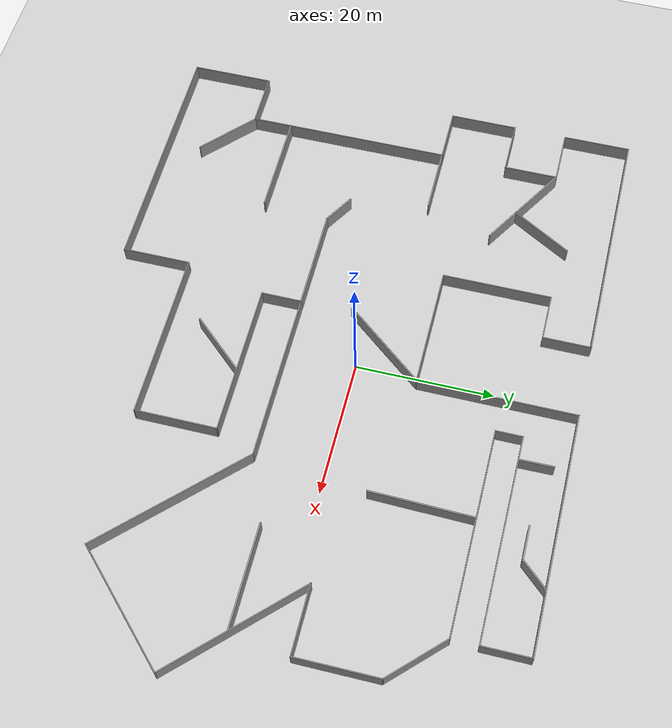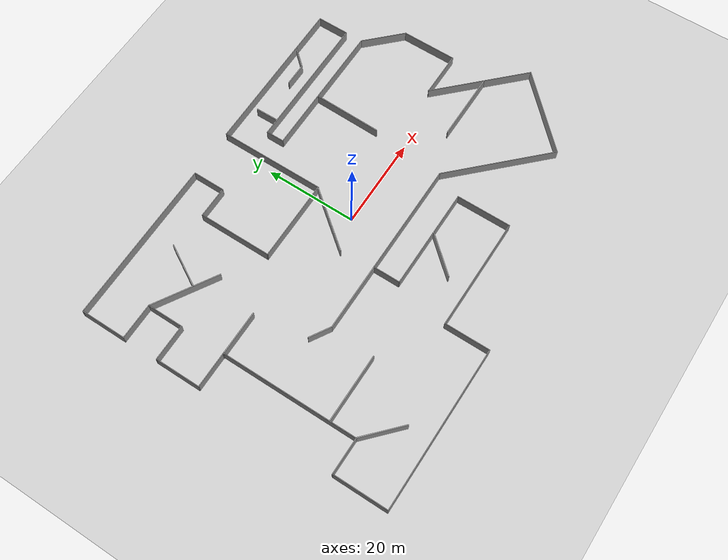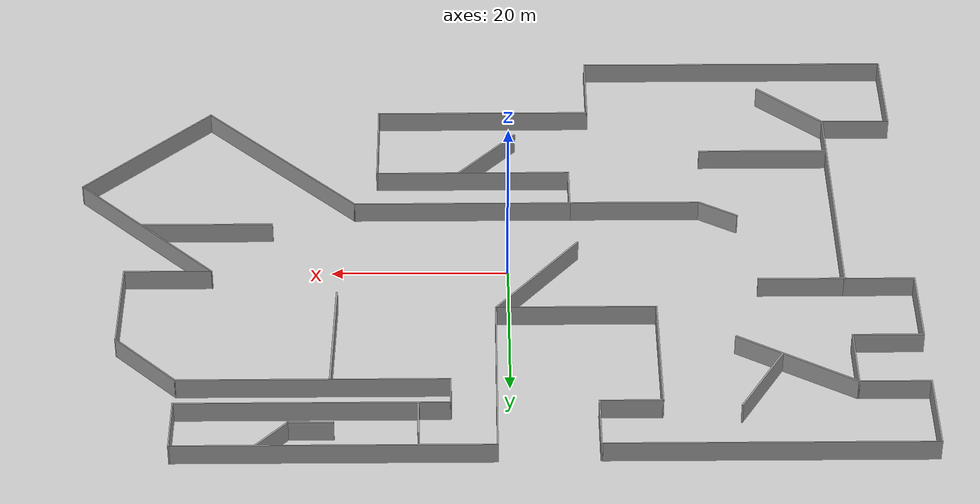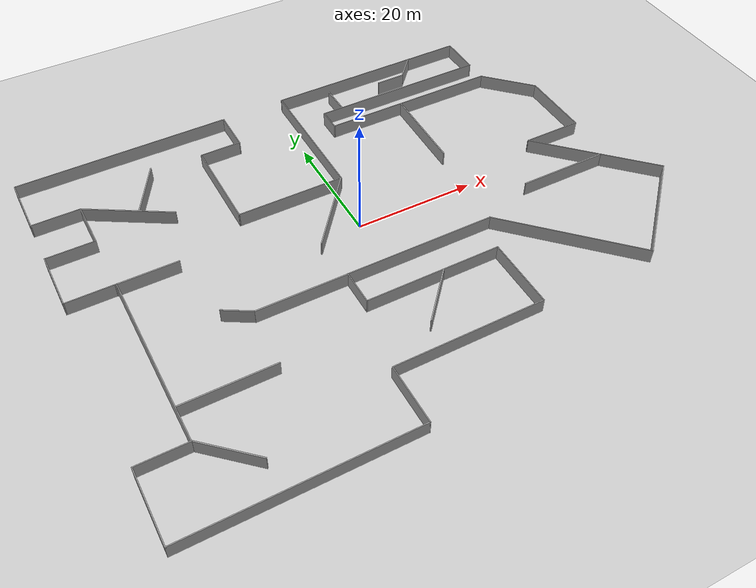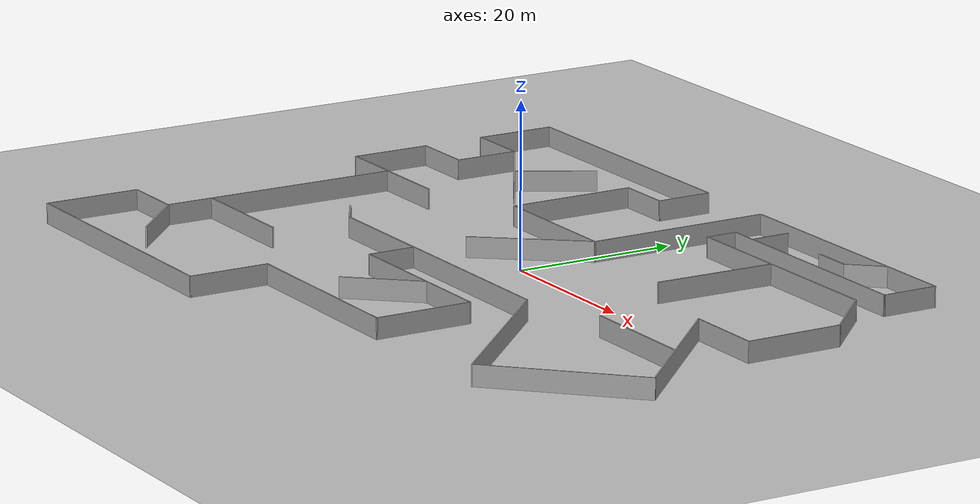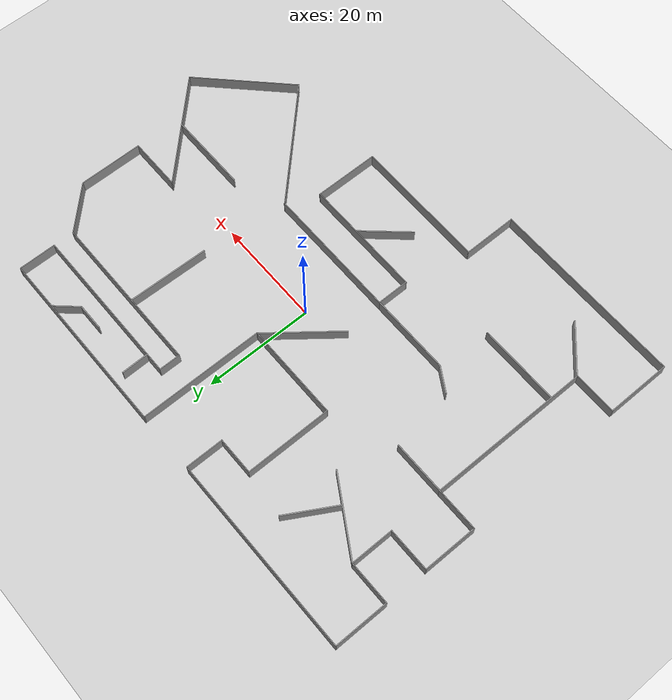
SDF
<sdf version="1.6">
 <world name="default">
  <light name="sun" type="directional">
   <pose>0 0 10 0 -0 0</pose>
   <diffuse>0.8 0.8 0.8 1</diffuse>
   <specular>0.1 0.1 0.1 1</specular>
   <attenuation>
    <range>1000</range>
    <constant>0.9</constant>
    <linear>0.01</linear>
    <quadratic>0.001</quadratic>
   </attenuation>
   <direction>-0.5 0.5 -1</direction>
  </light>
  <model name="ground_plane">
   <static>1</static>
   <link name="link">
    <collision name="collision">
     <geometry><plane><normal>0 0 1</normal><size>100 100</size></plane></geometry>
     <surface><friction><ode><mu>100</mu><mu2>50</mu2></ode></friction></surface>
    </collision>
    <visual name="visual">
     <cast_shadows>0</cast_shadows>
     <geometry><plane><normal>0 0 1</normal><size>100 100</size></plane></geometry>
     <material>
      <script><uri>file://media/materials/scripts/gazebo.material</uri><name>Gazebo/Grey</name></script>
     </material>
    </visual>
   </link>
  </model>
  <gravity>0 0 -9.8</gravity>
  <magnetic_field>6e-06 2.3e-05 -4.2e-05</magnetic_field>
  <atmosphere type="adiabatic"/>
  <physics name="default_physics" default="0" type="ode">
   <max_step_size>0.001</max_step_size>
   <real_time_factor>1</real_time_factor>
   <real_time_update_rate>1000</real_time_update_rate>
  </physics>
  <scene><ambient>0.4 0.4 0.4 1</ambient><background>0.7 0.7 0.7 1</background><shadows>1</shadows></scene>
  <spherical_coordinates>
   <surface_model>EARTH_WGS84</surface_model>
   <latitude_deg>0</latitude_deg>
   <longitude_deg>0</longitude_deg>
   <elevation>0</elevation>
   <heading_deg>0</heading_deg>
  </spherical_coordinates>
  <model name="testmap">
   <pose>1.82578 -2.73611 0 0 -0 0</pose>
   <link name="Wall_0">
    <collision name="Wall_0_Collision">
     <geometry><box><size>36 0.15 2.5</size></box></geometry>
     <pose>0 0 1.25 0 -0 0</pose>
    </collision>
    <visual name="Wall_0_Visual">
     <pose>0 0 1.25 0 -0 0</pose>
     <geometry><box><size>36 0.15 2.5</size></box></geometry>
     <material>
      <script><uri>file://media/materials/scripts/gazebo.material</uri><name>Gazebo/Grey</name></script>
      <ambient>1 1 1 1</ambient>
     </material>
    </visual>
    <pose>-29.4941 34.5833 0 0 -0 3.14159</pose>
   </link>
   <link name="Wall_11">
    <collision name="Wall_11_Collision">
     <geometry><box><size>10 0.15 2.5</size></box></geometry>
     <pose>0 0 1.25 0 -0 0</pose>
    </collision>
    <visual name="Wall_11_Visual">
     <pose>0 0 1.25 0 -0 0</pose>
     <geometry><box><size>10 0.15 2.5</size></box></geometry>
     <material>
      <script><uri>file://media/materials/scripts/gazebo.material</uri><name>Gazebo/Grey</name></script>
      <ambient>1 1 1 1</ambient>
     </material>
    </visual>
    <pose>-47.4194 11.9583 0 0 0 -1.5708</pose>
   </link>
   <link name="Wall_13">
    <collision name="Wall_13_Collision">
     <geometry><box><size>8 0.15 2.5</size></box></geometry>
     <pose>0 0 1.25 0 -0 0</pose>
    </collision>
    <visual name="Wall_13_Visual">
     <pose>0 0 1.25 0 -0 0</pose>
     <geometry><box><size>8 0.15 2.5</size></box></geometry>
     <material>
      <script><uri>file://media/materials/scripts/gazebo.material</uri><name>Gazebo/Grey</name></script>
      <ambient>1 1 1 1</ambient>
     </material>
    </visual>
    <pose>-43.4944 7.03335 0 0 -0 0</pose>
   </link>
   <link name="Wall_15">
    <collision name="Wall_15_Collision">
     <geometry><box><size>30 0.15 2.5</size></box></geometry>
     <pose>0 0 1.25 0 -0 0</pose>
    </collision>
    <visual name="Wall_15_Visual">
     <pose>0 0 1.25 0 -0 0</pose>
     <geometry><box><size>30 0.15 2.5</size></box></geometry>
     <material>
      <script><uri>file://media/materials/scripts/gazebo.material</uri><name>Gazebo/Grey</name></script>
      <ambient>1 1 1 1</ambient>
     </material>
    </visual>
    <pose>-39.5694 -7.89165 0 0 0 -1.5708</pose>
   </link>
   <link name="Wall_18">
    <collision name="Wall_18_Collision">
     <geometry><box><size>8 0.15 2.5</size></box></geometry>
     <pose>0 0 1.25 0 -0 0</pose>
    </collision>
    <visual name="Wall_18_Visual">
     <pose>0 0 1.25 0 -0 0</pose>
     <geometry><box><size>8 0.15 2.5</size></box></geometry>
     <material>
      <script><uri>file://media/materials/scripts/gazebo.material</uri><name>Gazebo/Grey</name></script>
      <ambient>1 1 1 1</ambient>
     </material>
    </visual>
    <pose>-43.4944 -22.8167 0 0 -0 3.14159</pose>
   </link>
   <link name="Wall_2">
    <collision name="Wall_2_Collision">
     <geometry><box><size>10 0.15 2.5</size></box></geometry>
     <pose>0 0 1.25 0 -0 0</pose>
    </collision>
    <visual name="Wall_2_Visual">
     <pose>0 0 1.25 0 -0 0</pose>
     <geometry><box><size>10 0.15 2.5</size></box></geometry>
     <material>
      <script><uri>file://media/materials/scripts/gazebo.material</uri><name>Gazebo/Grey</name></script>
      <ambient>1 1 1 1</ambient>
     </material>
    </visual>
    <pose>-47.4191 29.6583 0 0 0 -1.5708</pose>
   </link>
   <link name="Wall_21">
    <collision name="Wall_21_Collision">
     <geometry><box><size>12 0.15 2.5</size></box></geometry>
     <pose>0 0 1.25 0 -0 0</pose>
    </collision>
    <visual name="Wall_21_Visual">
     <pose>0 0 1.25 0 -0 0</pose>
     <geometry><box><size>12 0.15 2.5</size></box></geometry>
     <material>
      <script><uri>file://media/materials/scripts/gazebo.material</uri><name>Gazebo/Grey</name></script>
      <ambient>1 1 1 1</ambient>
     </material>
    </visual>
    <pose>-47.4194 -28.7417 0 0 0 -1.5708</pose>
   </link>
   <link name="Wall_23">
    <collision name="Wall_23_Collision">
     <geometry><box><size>36 0.15 2.5</size></box></geometry>
     <pose>0 0 1.25 0 -0 0</pose>
    </collision>
    <visual name="Wall_23_Visual">
     <pose>0 0 1.25 0 -0 0</pose>
     <geometry><box><size>36 0.15 2.5</size></box></geometry>
     <material>
      <script><uri>file://media/materials/scripts/gazebo.material</uri><name>Gazebo/Grey</name></script>
      <ambient>1 1 1 1</ambient>
     </material>
    </visual>
    <pose>-29.4944 -34.6667 0 0 -0 0</pose>
   </link>
   <link name="Wall_25">
    <collision name="Wall_25_Collision">
     <geometry><box><size>10 0.15 2.5</size></box></geometry>
     <pose>0 0 1.25 0 -0 0</pose>
    </collision>
    <visual name="Wall_25_Visual">
     <pose>0 0 1.25 0 -0 0</pose>
     <geometry><box><size>10 0.15 2.5</size></box></geometry>
     <material>
      <script><uri>file://media/materials/scripts/gazebo.material</uri><name>Gazebo/Grey</name></script>
      <ambient>1 1 1 1</ambient>
     </material>
    </visual>
    <pose>-11.5694 -29.7417 0 0 -0 1.5708</pose>
   </link>
   <link name="Wall_27">
    <collision name="Wall_27_Collision">
     <geometry><box><size>25 0.15 2.5</size></box></geometry>
     <pose>0 0 1.25 0 -0 0</pose>
    </collision>
    <visual name="Wall_27_Visual">
     <pose>0 0 1.25 0 -0 0</pose>
     <geometry><box><size>25 0.15 2.5</size></box></geometry>
     <material>
      <script><uri>file://media/materials/scripts/gazebo.material</uri><name>Gazebo/Grey</name></script>
      <ambient>1 1 1 1</ambient>
     </material>
    </visual>
    <pose>0.855629 -24.8167 0 0 -0 0</pose>
   </link>
   <link name="Wall_29">
    <collision name="Wall_29_Collision">
     <geometry><box><size>12 0.15 2.5</size></box></geometry>
     <pose>0 0 1.25 0 -0 0</pose>
    </collision>
    <visual name="Wall_29_Visual">
     <pose>0 0 1.25 0 -0 0</pose>
     <geometry><box><size>12 0.15 2.5</size></box></geometry>
     <material>
      <script><uri>file://media/materials/scripts/gazebo.material</uri><name>Gazebo/Grey</name></script>
      <ambient>1 1 1 1</ambient>
     </material>
    </visual>
    <pose>13.2806 -18.8917 0 0 -0 1.5708</pose>
   </link>
   <link name="Wall_32">
    <collision name="Wall_32_Collision">
     <geometry><box><size>22.5 0.15 2.5</size></box></geometry>
     <pose>0 0 1.25 0 -0 0</pose>
    </collision>
    <visual name="Wall_32_Visual">
     <pose>0 0 1.25 0 -0 0</pose>
     <geometry><box><size>22.5 0.15 2.5</size></box></geometry>
     <material>
      <script><uri>file://media/materials/scripts/gazebo.material</uri><name>Gazebo/Grey</name></script>
      <ambient>1 1 1 1</ambient>
     </material>
    </visual>
    <pose>2.10563 -12.9667 0 0 -0 3.14159</pose>
   </link>
   <link name="Wall_34">
    <collision name="Wall_34_Collision">
     <geometry><box><size>6 0.15 2.5</size></box></geometry>
     <pose>0 0 1.25 0 -0 0</pose>
    </collision>
    <visual name="Wall_34_Visual">
     <pose>0 0 1.25 0 -0 0</pose>
     <geometry><box><size>6 0.15 2.5</size></box></geometry>
     <material>
      <script><uri>file://media/materials/scripts/gazebo.material</uri><name>Gazebo/Grey</name></script>
      <ambient>1 1 1 1</ambient>
     </material>
    </visual>
    <pose>-9.06937 -10.0417 0 0 -0 1.5708</pose>
   </link>
   <link name="Wall_36">
    <collision name="Wall_36_Collision">
     <geometry><box><size>25 0.15 2.5</size></box></geometry>
     <pose>0 0 1.25 0 -0 0</pose>
    </collision>
    <visual name="Wall_36_Visual">
     <pose>0 0 1.25 0 -0 0</pose>
     <geometry><box><size>25 0.15 2.5</size></box></geometry>
     <material>
      <script><uri>file://media/materials/scripts/gazebo.material</uri><name>Gazebo/Grey</name></script>
      <ambient>1 1 1 1</ambient>
     </material>
    </visual>
    <pose>3.35563 -7.11665 0 0 -0 0</pose>
   </link>
   <link name="Wall_39">
    <collision name="Wall_39_Collision">
     <geometry><box><size>25 0.15 2.5</size></box></geometry>
     <pose>0 0 1.25 0 -0 0</pose>
    </collision>
    <visual name="Wall_39_Visual">
     <pose>0 0 1.25 0 -0 0</pose>
     <geometry><box><size>25 0.15 2.5</size></box></geometry>
     <material>
      <script><uri>file://media/materials/scripts/gazebo.material</uri><name>Gazebo/Grey</name></script>
      <ambient>1 1 1 1</ambient>
     </material>
    </visual>
    <pose>24.5664 -15.9025 0 0 0 -0.785398</pose>
   </link>
   <link name="Wall_4">
    <collision name="Wall_4_Collision">
     <geometry><box><size>8 0.15 2.5</size></box></geometry>
     <pose>0 0 1.25 0 -0 0</pose>
    </collision>
    <visual name="Wall_4_Visual">
     <pose>0 0 1.25 0 -0 0</pose>
     <geometry><box><size>8 0.15 2.5</size></box></geometry>
     <material>
      <script><uri>file://media/materials/scripts/gazebo.material</uri><name>Gazebo/Grey</name></script>
      <ambient>1 1 1 1</ambient>
     </material>
    </visual>
    <pose>-43.4941 24.7333 0 0 -0 0</pose>
   </link>
   <link name="Wall_43">
    <collision name="Wall_43_Collision">
     <geometry><box><size>20 0.15 2.5</size></box></geometry>
     <pose>0 0 1.25 0 -0 0</pose>
    </collision>
    <visual name="Wall_43_Visual">
     <pose>0 0 1.25 0 -0 0</pose>
     <geometry><box><size>20 0.15 2.5</size></box></geometry>
     <material>
      <script><uri>file://media/materials/scripts/gazebo.material</uri><name>Gazebo/Grey</name></script>
      <ambient>1 1 1 1</ambient>
     </material>
    </visual>
    <pose>40.3703 -17.6702 0 0 -0 0.785398</pose>
   </link>
   <link name="Wall_45">
    <collision name="Wall_45_Collision">
     <geometry><box><size>22.5 0.15 2.5</size></box></geometry>
     <pose>0 0 1.25 0 -0 0</pose>
    </collision>
    <visual name="Wall_45_Visual">
     <pose>0 0 1.25 0 -0 0</pose>
     <geometry><box><size>22.5 0.15 2.5</size></box></geometry>
     <material>
      <script><uri>file://media/materials/scripts/gazebo.material</uri><name>Gazebo/Grey</name></script>
      <ambient>1 1 1 1</ambient>
     </material>
    </visual>
    <pose>39.4864 -2.75027 0 0 -0 2.35619</pose>
   </link>
   <link name="Wall_47">
    <collision name="Wall_47_Collision">
     <geometry><box><size>10 0.15 2.5</size></box></geometry>
     <pose>0 0 1.25 0 -0 0</pose>
    </collision>
    <visual name="Wall_47_Visual">
     <pose>0 0 1.25 0 -0 0</pose>
     <geometry><box><size>10 0.15 2.5</size></box></geometry>
     <material>
      <script><uri>file://media/materials/scripts/gazebo.material</uri><name>Gazebo/Grey</name></script>
      <ambient>1 1 1 1</ambient>
     </material>
    </visual>
    <pose>36.5095 5.15165 0 0 -0 0</pose>
   </link>
   <link name="Wall_50">
    <collision name="Wall_50_Collision">
     <geometry><box><size>12 0.15 2.5</size></box></geometry>
     <pose>0 0 1.25 0 -0 0</pose>
    </collision>
    <visual name="Wall_50_Visual">
     <pose>0 0 1.25 0 -0 0</pose>
     <geometry><box><size>12 0.15 2.5</size></box></geometry>
     <material>
      <script><uri>file://media/materials/scripts/gazebo.material</uri><name>Gazebo/Grey</name></script>
      <ambient>1 1 1 1</ambient>
     </material>
    </visual>
    <pose>41.4345 11.0767 0 0 -0 1.5708</pose>
   </link>
   <link name="Wall_52">
    <collision name="Wall_52_Collision">
     <geometry><box><size>10 0.15 2.5</size></box></geometry>
     <pose>0 0 1.25 0 -0 0</pose>
    </collision>
    <visual name="Wall_52_Visual">
     <pose>0 0 1.25 0 -0 0</pose>
     <geometry><box><size>10 0.15 2.5</size></box></geometry>
     <material>
      <script><uri>file://media/materials/scripts/gazebo.material</uri><name>Gazebo/Grey</name></script>
      <ambient>1 1 1 1</ambient>
     </material>
    </visual>
    <pose>37.952 20.4842 0 0 -0 2.35619</pose>
   </link>
   <link name="Wall_54">
    <collision name="Wall_54_Collision">
     <geometry><box><size>30 0.15 2.5</size></box></geometry>
     <pose>0 0 1.25 0 -0 0</pose>
    </collision>
    <visual name="Wall_54_Visual">
     <pose>0 0 1.25 0 -0 0</pose>
     <geometry><box><size>30 0.15 2.5</size></box></geometry>
     <material>
      <script><uri>file://media/materials/scripts/gazebo.material</uri><name>Gazebo/Grey</name></script>
      <ambient>1 1 1 1</ambient>
     </material>
    </visual>
    <pose>19.5445 23.9667 0 0 -0 3.14159</pose>
   </link>
   <link name="Wall_56">
    <collision name="Wall_56_Collision">
     <geometry><box><size>4 0.15 2.5</size></box></geometry>
     <pose>0 0 1.25 0 -0 0</pose>
    </collision>
    <visual name="Wall_56_Visual">
     <pose>0 0 1.25 0 -0 0</pose>
     <geometry><box><size>4 0.15 2.5</size></box></geometry>
     <material>
      <script><uri>file://media/materials/scripts/gazebo.material</uri><name>Gazebo/Grey</name></script>
      <ambient>1 1 1 1</ambient>
     </material>
    </visual>
    <pose>4.61946 25.8917 0 0 -0 1.5708</pose>
   </link>
   <link name="Wall_58">
    <collision name="Wall_58_Collision">
     <geometry><box><size>30 0.15 2.5</size></box></geometry>
     <pose>0 0 1.25 0 -0 0</pose>
    </collision>
    <visual name="Wall_58_Visual">
     <pose>0 0 1.25 0 -0 0</pose>
     <geometry><box><size>30 0.15 2.5</size></box></geometry>
     <material>
      <script><uri>file://media/materials/scripts/gazebo.material</uri><name>Gazebo/Grey</name></script>
      <ambient>1 1 1 1</ambient>
     </material>
    </visual>
    <pose>19.5445 27.8167 0 0 -0 0</pose>
   </link>
   <link name="Wall_6">
    <collision name="Wall_6_Collision">
     <geometry><box><size>8 0.15 2.5</size></box></geometry>
     <pose>0 0 1.25 0 -0 0</pose>
    </collision>
    <visual name="Wall_6_Visual">
     <pose>0 0 1.25 0 -0 0</pose>
     <geometry><box><size>8 0.15 2.5</size></box></geometry>
     <material>
      <script><uri>file://media/materials/scripts/gazebo.material</uri><name>Gazebo/Grey</name></script>
      <ambient>1 1 1 1</ambient>
     </material>
    </visual>
    <pose>-39.5692 20.8083 0 0 0 -1.57083</pose>
   </link>
   <link name="Wall_60">
    <collision name="Wall_60_Collision">
     <geometry><box><size>7 0.15 2.5</size></box></geometry>
     <pose>0 0 1.25 0 -0 0</pose>
    </collision>
    <visual name="Wall_60_Visual">
     <pose>0 0 1.25 0 -0 0</pose>
     <geometry><box><size>7 0.15 2.5</size></box></geometry>
     <material>
      <script><uri>file://media/materials/scripts/gazebo.material</uri><name>Gazebo/Grey</name></script>
      <ambient>1 1 1 1</ambient>
     </material>
    </visual>
    <pose>34.4695 31.2417 0 0 -0 1.5708</pose>
   </link>
   <link name="Wall_62">
    <collision name="Wall_62_Collision">
     <geometry><box><size>35 0.15 2.5</size></box></geometry>
     <pose>0 0 1.25 0 -0 0</pose>
    </collision>
    <visual name="Wall_62_Visual">
     <pose>0 0 1.25 0 -0 0</pose>
     <geometry><box><size>35 0.15 2.5</size></box></geometry>
     <material>
      <script><uri>file://media/materials/scripts/gazebo.material</uri><name>Gazebo/Grey</name></script>
      <ambient>1 1 1 1</ambient>
     </material>
    </visual>
    <pose>17.0445 34.6667 0 0 -0 3.14159</pose>
   </link>
   <link name="Wall_64">
    <collision name="Wall_64_Collision">
     <geometry><box><size>23 0.15 2.5</size></box></geometry>
     <pose>0 0 1.25 0 -0 0</pose>
    </collision>
    <visual name="Wall_64_Visual">
     <pose>0 0 1.25 0 -0 0</pose>
     <geometry><box><size>23 0.15 2.5</size></box></geometry>
     <material>
      <script><uri>file://media/materials/scripts/gazebo.material</uri><name>Gazebo/Grey</name></script>
      <ambient>1 1 1 1</ambient>
     </material>
    </visual>
    <pose>-0.380536 23.2417 0 0 0 -1.5708</pose>
   </link>
   <link name="Wall_66">
    <collision name="Wall_66_Collision">
     <geometry><box><size>18 0.15 2.5</size></box></geometry>
     <pose>0 0 1.25 0 -0 0</pose>
    </collision>
    <visual name="Wall_66_Visual">
     <pose>0 0 1.25 0 -0 0</pose>
     <geometry><box><size>18 0.15 2.5</size></box></geometry>
     <material>
      <script><uri>file://media/materials/scripts/gazebo.material</uri><name>Gazebo/Grey</name></script>
      <ambient>1 1 1 1</ambient>
     </material>
    </visual>
    <pose>-9.30554 11.8167 0 0 -0 3.14159</pose>
   </link>
   <link name="Wall_68">
    <collision name="Wall_68_Collision">
     <geometry><box><size>16 0.15 2.5</size></box></geometry>
     <pose>0 0 1.25 0 -0 0</pose>
    </collision>
    <visual name="Wall_68_Visual">
     <pose>0 0 1.25 0 -0 0</pose>
     <geometry><box><size>16 0.15 2.5</size></box></geometry>
     <material>
      <script><uri>file://media/materials/scripts/gazebo.material</uri><name>Gazebo/Grey</name></script>
      <ambient>1 1 1 1</ambient>
     </material>
    </visual>
    <pose>-18.2305 19.7417 0 0 -0 1.5708</pose>
   </link>
   <link name="Wall_70">
    <collision name="Wall_70_Collision">
     <geometry><box><size>7 0.15 2.5</size></box></geometry>
     <pose>0 0 1.25 0 -0 0</pose>
    </collision>
    <visual name="Wall_70_Visual">
     <pose>0 0 1.25 0 -0 0</pose>
     <geometry><box><size>7 0.15 2.5</size></box></geometry>
     <material>
      <script><uri>file://media/materials/scripts/gazebo.material</uri><name>Gazebo/Grey</name></script>
      <ambient>1 1 1 1</ambient>
     </material>
    </visual>
    <pose>-14.8055 27.6667 0 0 -0 0</pose>
   </link>
   <link name="Wall_72">
    <collision name="Wall_72_Collision">
     <geometry><box><size>7 0.15 2.5</size></box></geometry>
     <pose>0 0 1.25 0 -0 0</pose>
    </collision>
    <visual name="Wall_72_Visual">
     <pose>0 0 1.25 0 -0 0</pose>
     <geometry><box><size>7 0.15 2.5</size></box></geometry>
     <material>
      <script><uri>file://media/materials/scripts/gazebo.material</uri><name>Gazebo/Grey</name></script>
      <ambient>1 1 1 1</ambient>
     </material>
    </visual>
    <pose>-11.3805 31.0917 0 0 -0 1.5708</pose>
   </link>
   <link name="Wall_8">
    <collision name="Wall_8_Collision">
     <geometry><box><size>8 0.15 2.5</size></box></geometry>
     <pose>0 0 1.25 0 -0 0</pose>
    </collision>
    <visual name="Wall_8_Visual">
     <pose>0 0 1.25 0 -0 0</pose>
     <geometry><box><size>8 0.15 2.5</size></box></geometry>
     <material>
      <script><uri>file://media/materials/scripts/gazebo.material</uri><name>Gazebo/Grey</name></script>
      <ambient>1 1 1 1</ambient>
     </material>
    </visual>
    <pose>-43.4944 16.8833 0 0 -0 3.14159</pose>
   </link>
   <static>1</static>
  </model>
  <model name="10m_wall_0">
   <link name="link">
    <pose>0 0 1.24535 0 -0 0</pose>
    <inertial>
     <mass>0.965141</mass>
     <inertia>
      <ixx>0.932083</ixx>
      <ixy>0</ixy>
      <ixz>0</ixz>
      <iyy>0.932083</iyy>
      <iyz>0</iyz>
      <izz>0.965141</izz>
     </inertia>
    </inertial>
    <visual name="visual">
     <cast_shadows>0</cast_shadows>
     <geometry><box><size>10 0.2 2.5</size></box></geometry>
     <material>
      <script>
       <uri>model://grey_wall/materials/scripts</uri>
       <uri>model://grey_wall/materials/textures</uri>
       <name>vrc/grey_wall</name>
      </script>
      <ambient>1 1 1 1</ambient>
      <diffuse>1 1 1 1</diffuse>
      <specular>0 0 0 1</specular>
      <emissive>0 0 0 1</emissive>
      <shader type="vertex"><normal_map>__default__</normal_map></shader>
     </material>
    </visual>
    <collision name="collision">
     <geometry><box><size>10 0.2 2.5</size></box></geometry>
     <surface>
      <friction>
       <ode><mu>1</mu><mu2>1</mu2><fdir1>0 0 0</fdir1><slip1>0</slip1><slip2>0</slip2></ode>
       <torsional>
        <coefficient>1</coefficient>
        <patch_radius>0</patch_radius>
        <surface_radius>0</surface_radius>
        <use_patch_radius>1</use_patch_radius>
        <ode><slip>0</slip></ode>
       </torsional>
      </friction>
      <bounce><restitution_coefficient>0</restitution_coefficient><threshold>1e+06</threshold></bounce>
      <contact>
       <collide_without_contact>0</collide_without_contact>
       <collide_without_contact_bitmask>1</collide_without_contact_bitmask>
       <collide_bitmask>1</collide_bitmask>
       <ode>
        <soft_cfm>0</soft_cfm>
        <soft_erp>0.2</soft_erp>
        <kp>1e+13</kp>
        <kd>1</kd>
        <max_vel>0.01</max_vel>
        <min_depth>0</min_depth>
       </ode>
       <bullet>
        <split_impulse>1</split_impulse>
        <split_impulse_penetration_threshold>-0.01</split_impulse_penetration_threshold>
        <soft_cfm>0</soft_cfm>
        <soft_erp>0.2</soft_erp>
        <kp>1e+13</kp>
        <kd>1</kd>
       </bullet>
      </contact>
     </surface>
    </collision>
   </link>
   <static>1</static>
   <pose>-34.0489 -28.8641 0 0 0 -0.743908</pose>
  </model>
  <model name="15m_wall_1">
   <link name="link">
    <pose>0 0 1.24535 0 -0 0</pose>
    <inertial>
     <mass>0.965141</mass>
     <inertia>
      <ixx>0.932083</ixx>
      <ixy>0</ixy>
      <ixz>0</ixz>
      <iyy>0.932083</iyy>
      <iyz>0</iyz>
      <izz>0.965141</izz>
     </inertia>
    </inertial>
    <visual name="visual">
     <cast_shadows>0</cast_shadows>
     <geometry><box><size>15 0.2 2.5</size></box></geometry>
     <material>
      <script>
       <uri>model://grey_wall/materials/scripts</uri>
       <uri>model://grey_wall/materials/textures</uri>
       <name>vrc/grey_wall</name>
      </script>
      <ambient>1 1 1 1</ambient>
      <diffuse>1 1 1 1</diffuse>
      <specular>0 0 0 1</specular>
      <emissive>0 0 0 1</emissive>
      <shader type="vertex"><normal_map>__default__</normal_map></shader>
     </material>
    </visual>
    <collision name="collision">
     <geometry><box><size>15 0.2 2.5</size></box></geometry>
     <surface>
      <friction>
       <ode><mu>1</mu><mu2>1</mu2><fdir1>0 0 0</fdir1><slip1>0</slip1><slip2>0</slip2></ode>
       <torsional>
        <coefficient>1</coefficient>
        <patch_radius>0</patch_radius>
        <surface_radius>0</surface_radius>
        <use_patch_radius>1</use_patch_radius>
        <ode><slip>0</slip></ode>
       </torsional>
      </friction>
      <bounce><restitution_coefficient>0</restitution_coefficient><threshold>1e+06</threshold></bounce>
      <contact>
       <collide_without_contact>0</collide_without_contact>
       <collide_without_contact_bitmask>1</collide_without_contact_bitmask>
       <collide_bitmask>1</collide_bitmask>
       <ode>
        <soft_cfm>0</soft_cfm>
        <soft_erp>0.2</soft_erp>
        <kp>1e+13</kp>
        <kd>1</kd>
        <max_vel>0.01</max_vel>
        <min_depth>0</min_depth>
       </ode>
       <bullet>
        <split_impulse>1</split_impulse>
        <split_impulse_penetration_threshold>-0.01</split_impulse_penetration_threshold>
        <soft_cfm>0</soft_cfm>
        <soft_erp>0.2</soft_erp>
        <kp>1e+13</kp>
        <kd>1</kd>
       </bullet>
      </contact>
     </surface>
    </collision>
   </link>
   <static>1</static>
   <pose>-30.2051 -19.7214 0 0 -0 0</pose>
  </model>
  <model name="15m_wall_2">
   <link name="link">
    <pose>0 0 1.24535 0 -0 0</pose>
    <inertial>
     <mass>0.965141</mass>
     <inertia>
      <ixx>0.932083</ixx>
      <ixy>0</ixy>
      <ixz>0</ixz>
      <iyy>0.932083</iyy>
      <iyz>0</iyz>
      <izz>0.965141</izz>
     </inertia>
    </inertial>
    <visual name="visual">
     <cast_shadows>0</cast_shadows>
     <geometry><box><size>15 0.2 2.5</size></box></geometry>
     <material>
      <script>
       <uri>model://grey_wall/materials/scripts</uri>
       <uri>model://grey_wall/materials/textures</uri>
       <name>vrc/grey_wall</name>
      </script>
      <ambient>1 1 1 1</ambient>
      <diffuse>1 1 1 1</diffuse>
      <specular>0 0 0 1</specular>
      <emissive>0 0 0 1</emissive>
      <shader type="vertex"><normal_map>__default__</normal_map></shader>
     </material>
    </visual>
    <collision name="collision">
     <geometry><box><size>15 0.2 2.5</size></box></geometry>
     <surface>
      <friction>
       <ode><mu>1</mu><mu2>1</mu2><fdir1>0 0 0</fdir1><slip1>0</slip1><slip2>0</slip2></ode>
       <torsional>
        <coefficient>1</coefficient>
        <patch_radius>0</patch_radius>
        <surface_radius>0</surface_radius>
        <use_patch_radius>1</use_patch_radius>
        <ode><slip>0</slip></ode>
       </torsional>
      </friction>
      <bounce><restitution_coefficient>0</restitution_coefficient><threshold>1e+06</threshold></bounce>
      <contact>
       <collide_without_contact>0</collide_without_contact>
       <collide_without_contact_bitmask>1</collide_without_contact_bitmask>
       <collide_bitmask>1</collide_bitmask>
       <ode>
        <soft_cfm>0</soft_cfm>
        <soft_erp>0.2</soft_erp>
        <kp>1e+13</kp>
        <kd>1</kd>
        <max_vel>0.01</max_vel>
        <min_depth>0</min_depth>
       </ode>
       <bullet>
        <split_impulse>1</split_impulse>
        <split_impulse_penetration_threshold>-0.01</split_impulse_penetration_threshold>
        <soft_cfm>0</soft_cfm>
        <soft_erp>0.2</soft_erp>
        <kp>1e+13</kp>
        <kd>1</kd>
       </bullet>
      </contact>
     </surface>
    </collision>
   </link>
   <static>1</static>
   <pose>-14.6944 -9.88233 0 0 -0 0</pose>
  </model>
  <model name="5m_wall_2">
   <link name="link">
    <pose>0 0 1.24535 0 -0 0</pose>
    <inertial>
     <mass>0.965141</mass>
     <inertia>
      <ixx>0.932083</ixx>
      <ixy>0</ixy>
      <ixz>0</ixz>
      <iyy>0.932083</iyy>
      <iyz>0</iyz>
      <izz>0.965141</izz>
     </inertia>
    </inertial>
    <visual name="visual">
     <cast_shadows>0</cast_shadows>
     <geometry><box><size>5 0.2 2.5</size></box></geometry>
     <material>
      <script>
       <uri>model://grey_wall/materials/scripts</uri>
       <uri>model://grey_wall/materials/textures</uri>
       <name>vrc/grey_wall</name>
      </script>
      <ambient>1 1 1 1</ambient>
      <diffuse>1 1 1 1</diffuse>
      <specular>0 0 0 1</specular>
      <emissive>0 0 0 1</emissive>
      <shader type="vertex"><normal_map>__default__</normal_map></shader>
     </material>
    </visual>
    <collision name="collision">
     <geometry><box><size>5 0.2 2.5</size></box></geometry>
     <surface>
      <friction>
       <ode><mu>1</mu><mu2>1</mu2><fdir1>0 0 0</fdir1><slip1>0</slip1><slip2>0</slip2></ode>
       <torsional>
        <coefficient>1</coefficient>
        <patch_radius>0</patch_radius>
        <surface_radius>0</surface_radius>
        <use_patch_radius>1</use_patch_radius>
        <ode><slip>0</slip></ode>
       </torsional>
      </friction>
      <bounce><restitution_coefficient>0</restitution_coefficient><threshold>1e+06</threshold></bounce>
      <contact>
       <collide_without_contact>0</collide_without_contact>
       <collide_without_contact_bitmask>1</collide_without_contact_bitmask>
       <collide_bitmask>1</collide_bitmask>
       <ode>
        <soft_cfm>0</soft_cfm>
        <soft_erp>0.2</soft_erp>
        <kp>1e+13</kp>
        <kd>1</kd>
        <max_vel>0.01</max_vel>
        <min_depth>0</min_depth>
       </ode>
       <bullet>
        <split_impulse>1</split_impulse>
        <split_impulse_penetration_threshold>-0.01</split_impulse_penetration_threshold>
        <soft_cfm>0</soft_cfm>
        <soft_erp>0.2</soft_erp>
        <kp>1e+13</kp>
        <kd>1</kd>
       </bullet>
      </contact>
     </surface>
    </collision>
   </link>
   <static>1</static>
   <pose>-24.2874 -8.59369 0 0 0 -0.537987</pose>
  </model>
  <model name="10m_wall_1">
   <link name="link">
    <pose>0 0 1.24535 0 -0 0</pose>
    <inertial>
     <mass>0.965141</mass>
     <inertia>
      <ixx>0.932083</ixx>
      <ixy>0</ixy>
      <ixz>0</ixz>
      <iyy>0.932083</iyy>
      <iyz>0</iyz>
      <izz>0.965141</izz>
     </inertia>
    </inertial>
    <visual name="visual">
     <cast_shadows>0</cast_shadows>
     <geometry><box><size>10 0.2 2.5</size></box></geometry>
     <material>
      <script>
       <uri>model://grey_wall/materials/scripts</uri>
       <uri>model://grey_wall/materials/textures</uri>
       <name>vrc/grey_wall</name>
      </script>
      <ambient>1 1 1 1</ambient>
      <diffuse>1 1 1 1</diffuse>
      <specular>0 0 0 1</specular>
      <emissive>0 0 0 1</emissive>
      <shader type="vertex"><normal_map>__default__</normal_map></shader>
     </material>
    </visual>
    <collision name="collision">
     <geometry><box><size>10 0.2 2.5</size></box></geometry>
     <surface>
      <friction>
       <ode><mu>1</mu><mu2>1</mu2><fdir1>0 0 0</fdir1><slip1>0</slip1><slip2>0</slip2></ode>
       <torsional>
        <coefficient>1</coefficient>
        <patch_radius>0</patch_radius>
        <surface_radius>0</surface_radius>
        <use_patch_radius>1</use_patch_radius>
        <ode><slip>0</slip></ode>
       </torsional>
      </friction>
      <bounce><restitution_coefficient>0</restitution_coefficient><threshold>1e+06</threshold></bounce>
      <contact>
       <collide_without_contact>0</collide_without_contact>
       <collide_without_contact_bitmask>1</collide_without_contact_bitmask>
       <collide_bitmask>1</collide_bitmask>
       <ode>
        <soft_cfm>0</soft_cfm>
        <soft_erp>0.2</soft_erp>
        <kp>1e+13</kp>
        <kd>1</kd>
        <max_vel>0.01</max_vel>
        <min_depth>0</min_depth>
       </ode>
       <bullet>
        <split_impulse>1</split_impulse>
        <split_impulse_penetration_threshold>-0.01</split_impulse_penetration_threshold>
        <soft_cfm>0</soft_cfm>
        <soft_erp>0.2</soft_erp>
        <kp>1e+13</kp>
        <kd>1</kd>
       </bullet>
      </contact>
     </surface>
    </collision>
   </link>
   <static>1</static>
   <pose>2.29837 -19.4399 0 0 -0 0.84503</pose>
  </model>
  <model name="15m_wall_3">
   <link name="link">
    <pose>0 0 1.24535 0 -0 0</pose>
    <inertial>
     <mass>0.965141</mass>
     <inertia>
      <ixx>0.932083</ixx>
      <ixy>0</ixy>
      <ixz>0</ixz>
      <iyy>0.932083</iyy>
      <iyz>0</iyz>
      <izz>0.965141</izz>
     </inertia>
    </inertial>
    <visual name="visual">
     <cast_shadows>0</cast_shadows>
     <geometry><box><size>15 0.2 2.5</size></box></geometry>
     <material>
      <script>
       <uri>model://grey_wall/materials/scripts</uri>
       <uri>model://grey_wall/materials/textures</uri>
       <name>vrc/grey_wall</name>
      </script>
      <ambient>1 1 1 1</ambient>
      <diffuse>1 1 1 1</diffuse>
      <specular>0 0 0 1</specular>
      <emissive>0 0 0 1</emissive>
      <shader type="vertex"><normal_map>__default__</normal_map></shader>
     </material>
    </visual>
    <collision name="collision">
     <geometry><box><size>15 0.2 2.5</size></box></geometry>
     <surface>
      <friction>
       <ode><mu>1</mu><mu2>1</mu2><fdir1>0 0 0</fdir1><slip1>0</slip1><slip2>0</slip2></ode>
       <torsional>
        <coefficient>1</coefficient>
        <patch_radius>0</patch_radius>
        <surface_radius>0</surface_radius>
        <use_patch_radius>1</use_patch_radius>
        <ode><slip>0</slip></ode>
       </torsional>
      </friction>
      <bounce><restitution_coefficient>0</restitution_coefficient><threshold>1e+06</threshold></bounce>
      <contact>
       <collide_without_contact>0</collide_without_contact>
       <collide_without_contact_bitmask>1</collide_without_contact_bitmask>
       <collide_bitmask>1</collide_bitmask>
       <ode>
        <soft_cfm>0</soft_cfm>
        <soft_erp>0.2</soft_erp>
        <kp>1e+13</kp>
        <kd>1</kd>
        <max_vel>0.01</max_vel>
        <min_depth>0</min_depth>
       </ode>
       <bullet>
        <split_impulse>1</split_impulse>
        <split_impulse_penetration_threshold>-0.01</split_impulse_penetration_threshold>
        <soft_cfm>0</soft_cfm>
        <soft_erp>0.2</soft_erp>
        <kp>1e+13</kp>
        <kd>1</kd>
       </bullet>
      </contact>
     </surface>
    </collision>
   </link>
   <static>1</static>
   <pose>-31.2872 18.1046 0 0 0 -0.540554</pose>
  </model>
  <model name="10m_wall_2">
   <link name="link">
    <pose>0 0 1.24535 0 -0 0</pose>
    <inertial>
     <mass>0.965141</mass>
     <inertia>
      <ixx>0.932083</ixx>
      <ixy>0</ixy>
      <ixz>0</ixz>
      <iyy>0.932083</iyy>
      <iyz>0</iyz>
      <izz>0.965141</izz>
     </inertia>
    </inertial>
    <visual name="visual">
     <cast_shadows>0</cast_shadows>
     <geometry><box><size>10 0.2 2.5</size></box></geometry>
     <material>
      <script>
       <uri>model://grey_wall/materials/scripts</uri>
       <uri>model://grey_wall/materials/textures</uri>
       <name>vrc/grey_wall</name>
      </script>
      <ambient>1 1 1 1</ambient>
      <diffuse>1 1 1 1</diffuse>
      <specular>0 0 0 1</specular>
      <emissive>0 0 0 1</emissive>
      <shader type="vertex"><normal_map>__default__</normal_map></shader>
     </material>
    </visual>
    <collision name="collision">
     <geometry><box><size>10 0.2 2.5</size></box></geometry>
     <surface>
      <friction>
       <ode><mu>1</mu><mu2>1</mu2><fdir1>0 0 0</fdir1><slip1>0</slip1><slip2>0</slip2></ode>
       <torsional>
        <coefficient>1</coefficient>
        <patch_radius>0</patch_radius>
        <surface_radius>0</surface_radius>
        <use_patch_radius>1</use_patch_radius>
        <ode><slip>0</slip></ode>
       </torsional>
      </friction>
      <bounce><restitution_coefficient>0</restitution_coefficient><threshold>1e+06</threshold></bounce>
      <contact>
       <collide_without_contact>0</collide_without_contact>
       <collide_without_contact_bitmask>1</collide_without_contact_bitmask>
       <collide_bitmask>1</collide_bitmask>
       <ode>
        <soft_cfm>0</soft_cfm>
        <soft_erp>0.2</soft_erp>
        <kp>1e+13</kp>
        <kd>1</kd>
        <max_vel>0.01</max_vel>
        <min_depth>0</min_depth>
       </ode>
       <bullet>
        <split_impulse>1</split_impulse>
        <split_impulse_penetration_threshold>-0.01</split_impulse_penetration_threshold>
        <soft_cfm>0</soft_cfm>
        <soft_erp>0.2</soft_erp>
        <kp>1e+13</kp>
        <kd>1</kd>
       </bullet>
      </contact>
     </surface>
    </collision>
   </link>
   <static>1</static>
   <pose>-27.3704 21.5143 0 0 -0 1.0458</pose>
  </model>
  <model name="10m_wall_3">
   <link name="link">
    <pose>0 0 1.24535 0 -0 0</pose>
    <inertial>
     <mass>0.965141</mass>
     <inertia>
      <ixx>0.932083</ixx>
      <ixy>0</ixy>
      <ixz>0</ixz>
      <iyy>0.932083</iyy>
      <iyz>0</iyz>
      <izz>0.965141</izz>
     </inertia>
    </inertial>
    <visual name="visual">
     <cast_shadows>0</cast_shadows>
     <geometry><box><size>10 0.2 2.5</size></box></geometry>
     <material>
      <script>
       <uri>model://grey_wall/materials/scripts</uri>
       <uri>model://grey_wall/materials/textures</uri>
       <name>vrc/grey_wall</name>
      </script>
      <ambient>1 1 1 1</ambient>
      <diffuse>1 1 1 1</diffuse>
      <specular>0 0 0 1</specular>
      <emissive>0 0 0 1</emissive>
      <shader type="vertex"><normal_map>__default__</normal_map></shader>
     </material>
    </visual>
    <collision name="collision">
     <geometry><box><size>10 0.2 2.5</size></box></geometry>
     <surface>
      <friction>
       <ode><mu>1</mu><mu2>1</mu2><fdir1>0 0 0</fdir1><slip1>0</slip1><slip2>0</slip2></ode>
       <torsional>
        <coefficient>1</coefficient>
        <patch_radius>0</patch_radius>
        <surface_radius>0</surface_radius>
        <use_patch_radius>1</use_patch_radius>
        <ode><slip>0</slip></ode>
       </torsional>
      </friction>
      <bounce><restitution_coefficient>0</restitution_coefficient><threshold>1e+06</threshold></bounce>
      <contact>
       <collide_without_contact>0</collide_without_contact>
       <collide_without_contact_bitmask>1</collide_without_contact_bitmask>
       <collide_bitmask>1</collide_bitmask>
       <ode>
        <soft_cfm>0</soft_cfm>
        <soft_erp>0.2</soft_erp>
        <kp>1e+13</kp>
        <kd>1</kd>
        <max_vel>0.01</max_vel>
        <min_depth>0</min_depth>
       </ode>
       <bullet>
        <split_impulse>1</split_impulse>
        <split_impulse_penetration_threshold>-0.01</split_impulse_penetration_threshold>
        <soft_cfm>0</soft_cfm>
        <soft_erp>0.2</soft_erp>
        <kp>1e+13</kp>
        <kd>1</kd>
       </bullet>
      </contact>
     </surface>
    </collision>
   </link>
   <static>1</static>
   <pose>-33.0029 4.26642 0 0 -0 0</pose>
  </model>
  <model name="15m_wall_4">
   <link name="link">
    <pose>0 0 1.24535 0 -0 0</pose>
    <inertial>
     <mass>0.965141</mass>
     <inertia>
      <ixx>0.932083</ixx>
      <ixy>0</ixy>
      <ixz>0</ixz>
      <iyy>0.932083</iyy>
      <iyz>0</iyz>
      <izz>0.965141</izz>
     </inertia>
    </inertial>
    <visual name="visual">
     <cast_shadows>0</cast_shadows>
     <geometry><box><size>15 0.2 2.5</size></box></geometry>
     <material>
      <script>
       <uri>model://grey_wall/materials/scripts</uri>
       <uri>model://grey_wall/materials/textures</uri>
       <name>vrc/grey_wall</name>
      </script>
      <ambient>1 1 1 1</ambient>
      <diffuse>1 1 1 1</diffuse>
      <specular>0 0 0 1</specular>
      <emissive>0 0 0 1</emissive>
      <shader type="vertex"><normal_map>__default__</normal_map></shader>
     </material>
    </visual>
    <collision name="collision">
     <geometry><box><size>15 0.2 2.5</size></box></geometry>
     <surface>
      <friction>
       <ode><mu>1</mu><mu2>1</mu2><fdir1>0 0 0</fdir1><slip1>0</slip1><slip2>0</slip2></ode>
       <torsional>
        <coefficient>1</coefficient>
        <patch_radius>0</patch_radius>
        <surface_radius>0</surface_radius>
        <use_patch_radius>1</use_patch_radius>
        <ode><slip>0</slip></ode>
       </torsional>
      </friction>
      <bounce><restitution_coefficient>0</restitution_coefficient><threshold>1e+06</threshold></bounce>
      <contact>
       <collide_without_contact>0</collide_without_contact>
       <collide_without_contact_bitmask>1</collide_without_contact_bitmask>
       <collide_bitmask>1</collide_bitmask>
       <ode>
        <soft_cfm>0</soft_cfm>
        <soft_erp>0.2</soft_erp>
        <kp>1e+13</kp>
        <kd>1</kd>
        <max_vel>0.01</max_vel>
        <min_depth>0</min_depth>
       </ode>
       <bullet>
        <split_impulse>1</split_impulse>
        <split_impulse_penetration_threshold>-0.01</split_impulse_penetration_threshold>
        <soft_cfm>0</soft_cfm>
        <soft_erp>0.2</soft_erp>
        <kp>1e+13</kp>
        <kd>1</kd>
       </bullet>
      </contact>
     </surface>
    </collision>
   </link>
   <static>1</static>
   <pose>-3.25426 3.29381 0 0 0 -2.24721</pose>
  </model>
  <model name="5m_wall_3">
   <link name="link">
    <pose>0 0 1.24535 0 -0 0</pose>
    <inertial>
     <mass>0.965141</mass>
     <inertia>
      <ixx>0.932083</ixx>
      <ixy>0</ixy>
      <ixz>0</ixz>
      <iyy>0.932083</iyy>
      <iyz>0</iyz>
      <izz>0.965141</izz>
     </inertia>
    </inertial>
    <visual name="visual">
     <cast_shadows>0</cast_shadows>
     <geometry><box><size>5 0.2 2.5</size></box></geometry>
     <material>
      <script>
       <uri>model://grey_wall/materials/scripts</uri>
       <uri>model://grey_wall/materials/textures</uri>
       <name>vrc/grey_wall</name>
      </script>
      <ambient>1 1 1 1</ambient>
      <diffuse>1 1 1 1</diffuse>
      <specular>0 0 0 1</specular>
      <emissive>0 0 0 1</emissive>
      <shader type="vertex"><normal_map>__default__</normal_map></shader>
     </material>
    </visual>
    <collision name="collision">
     <geometry><box><size>5 0.2 2.5</size></box></geometry>
     <surface>
      <friction>
       <ode><mu>1</mu><mu2>1</mu2><fdir1>0 0 0</fdir1><slip1>0</slip1><slip2>0</slip2></ode>
       <torsional>
        <coefficient>1</coefficient>
        <patch_radius>0</patch_radius>
        <surface_radius>0</surface_radius>
        <use_patch_radius>1</use_patch_radius>
        <ode><slip>0</slip></ode>
       </torsional>
      </friction>
      <bounce><restitution_coefficient>0</restitution_coefficient><threshold>1e+06</threshold></bounce>
      <contact>
       <collide_without_contact>0</collide_without_contact>
       <collide_without_contact_bitmask>1</collide_without_contact_bitmask>
       <collide_bitmask>1</collide_bitmask>
       <ode>
        <soft_cfm>0</soft_cfm>
        <soft_erp>0.2</soft_erp>
        <kp>1e+13</kp>
        <kd>1</kd>
        <max_vel>0.01</max_vel>
        <min_depth>0</min_depth>
       </ode>
       <bullet>
        <split_impulse>1</split_impulse>
        <split_impulse_penetration_threshold>-0.01</split_impulse_penetration_threshold>
        <soft_cfm>0</soft_cfm>
        <soft_erp>0.2</soft_erp>
        <kp>1e+13</kp>
        <kd>1</kd>
       </bullet>
      </contact>
     </surface>
    </collision>
   </link>
   <static>1</static>
   <pose>25.4697 30.075 0 0 -0 0.835188</pose>
  </model>
  <model name="5m_wall_4">
   <link name="link">
    <pose>0 0 1.24535 0 -0 0</pose>
    <inertial>
     <mass>0.965141</mass>
     <inertia>
      <ixx>0.932083</ixx>
      <ixy>0</ixy>
      <ixz>0</ixz>
      <iyy>0.932083</iyy>
      <iyz>0</iyz>
      <izz>0.965141</izz>
     </inertia>
    </inertial>
    <visual name="visual">
     <cast_shadows>0</cast_shadows>
     <geometry><box><size>5 0.2 2.5</size></box></geometry>
     <material>
      <script>
       <uri>model://grey_wall/materials/scripts</uri>
       <uri>model://grey_wall/materials/textures</uri>
       <name>vrc/grey_wall</name>
      </script>
      <ambient>1 1 1 1</ambient>
      <diffuse>1 1 1 1</diffuse>
      <specular>0 0 0 1</specular>
      <emissive>0 0 0 1</emissive>
      <shader type="vertex"><normal_map>__default__</normal_map></shader>
     </material>
    </visual>
    <collision name="collision">
     <geometry><box><size>5 0.2 2.5</size></box></geometry>
     <surface>
      <friction>
       <ode><mu>1</mu><mu2>1</mu2><fdir1>0 0 0</fdir1><slip1>0</slip1><slip2>0</slip2></ode>
       <torsional>
        <coefficient>1</coefficient>
        <patch_radius>0</patch_radius>
        <surface_radius>0</surface_radius>
        <use_patch_radius>1</use_patch_radius>
        <ode><slip>0</slip></ode>
       </torsional>
      </friction>
      <bounce><restitution_coefficient>0</restitution_coefficient><threshold>1e+06</threshold></bounce>
      <contact>
       <collide_without_contact>0</collide_without_contact>
       <collide_without_contact_bitmask>1</collide_without_contact_bitmask>
       <collide_bitmask>1</collide_bitmask>
       <ode>
        <soft_cfm>0</soft_cfm>
        <soft_erp>0.2</soft_erp>
        <kp>1e+13</kp>
        <kd>1</kd>
        <max_vel>0.01</max_vel>
        <min_depth>0</min_depth>
       </ode>
       <bullet>
        <split_impulse>1</split_impulse>
        <split_impulse_penetration_threshold>-0.01</split_impulse_penetration_threshold>
        <soft_cfm>0</soft_cfm>
        <soft_erp>0.2</soft_erp>
        <kp>1e+13</kp>
        <kd>1</kd>
       </bullet>
      </contact>
     </surface>
    </collision>
   </link>
   <static>1</static>
   <pose>21.3891 28.2564 0 0 -0 0</pose>
  </model>
  <model name="5m_wall_5">
   <link name="link">
    <pose>0 0 1.24535 0 -0 0</pose>
    <inertial>
     <mass>0.965141</mass>
     <inertia>
      <ixx>0.932083</ixx>
      <ixy>0</ixy>
      <ixz>0</ixz>
      <iyy>0.932083</iyy>
      <iyz>0</iyz>
      <izz>0.965141</izz>
     </inertia>
    </inertial>
    <visual name="visual">
     <cast_shadows>0</cast_shadows>
     <geometry><box><size>5 0.2 2.5</size></box></geometry>
     <material>
      <script>
       <uri>model://grey_wall/materials/scripts</uri>
       <uri>model://grey_wall/materials/textures</uri>
       <name>vrc/grey_wall</name>
      </script>
      <ambient>1 1 1 1</ambient>
      <diffuse>1 1 1 1</diffuse>
      <specular>0 0 0 1</specular>
      <emissive>0 0 0 1</emissive>
      <shader type="vertex"><normal_map>__default__</normal_map></shader>
     </material>
    </visual>
    <collision name="collision">
     <geometry><box><size>5 0.2 2.5</size></box></geometry>
     <surface>
      <friction>
       <ode><mu>1</mu><mu2>1</mu2><fdir1>0 0 0</fdir1><slip1>0</slip1><slip2>0</slip2></ode>
       <torsional>
        <coefficient>1</coefficient>
        <patch_radius>0</patch_radius>
        <surface_radius>0</surface_radius>
        <use_patch_radius>1</use_patch_radius>
        <ode><slip>0</slip></ode>
       </torsional>
      </friction>
      <bounce><restitution_coefficient>0</restitution_coefficient><threshold>1e+06</threshold></bounce>
      <contact>
       <collide_without_contact>0</collide_without_contact>
       <collide_without_contact_bitmask>1</collide_without_contact_bitmask>
       <collide_bitmask>1</collide_bitmask>
       <ode>
        <soft_cfm>0</soft_cfm>
        <soft_erp>0.2</soft_erp>
        <kp>1e+13</kp>
        <kd>1</kd>
        <max_vel>0.01</max_vel>
        <min_depth>0</min_depth>
       </ode>
       <bullet>
        <split_impulse>1</split_impulse>
        <split_impulse_penetration_threshold>-0.01</split_impulse_penetration_threshold>
        <soft_cfm>0</soft_cfm>
        <soft_erp>0.2</soft_erp>
        <kp>1e+13</kp>
        <kd>1</kd>
       </bullet>
      </contact>
     </surface>
    </collision>
   </link>
   <static>1</static>
   <pose>9.88697 27.552 0 0 -0 1.5832</pose>
  </model>
  <model name="15m_wall_5">
   <link name="link">
    <pose>0 0 1.24535 0 -0 0</pose>
    <inertial>
     <mass>0.965141</mass>
     <inertia>
      <ixx>0.932083</ixx>
      <ixy>0</ixy>
      <ixz>0</ixz>
      <iyy>0.932083</iyy>
      <iyz>0</iyz>
      <izz>0.965141</izz>
     </inertia>
    </inertial>
    <visual name="visual">
     <cast_shadows>0</cast_shadows>
     <geometry><box><size>15 0.2 2.5</size></box></geometry>
     <material>
      <script>
       <uri>model://grey_wall/materials/scripts</uri>
       <uri>model://grey_wall/materials/textures</uri>
       <name>vrc/grey_wall</name>
      </script>
      <ambient>1 1 1 1</ambient>
      <diffuse>1 1 1 1</diffuse>
      <specular>0 0 0 1</specular>
      <emissive>0 0 0 1</emissive>
      <shader type="vertex"><normal_map>__default__</normal_map></shader>
     </material>
    </visual>
    <collision name="collision">
     <geometry><box><size>15 0.2 2.5</size></box></geometry>
     <surface>
      <friction>
       <ode><mu>1</mu><mu2>1</mu2><fdir1>0 0 0</fdir1><slip1>0</slip1><slip2>0</slip2></ode>
       <torsional>
        <coefficient>1</coefficient>
        <patch_radius>0</patch_radius>
        <surface_radius>0</surface_radius>
        <use_patch_radius>1</use_patch_radius>
        <ode><slip>0</slip></ode>
       </torsional>
      </friction>
      <bounce><restitution_coefficient>0</restitution_coefficient><threshold>1e+06</threshold></bounce>
      <contact>
       <collide_without_contact>0</collide_without_contact>
       <collide_without_contact_bitmask>1</collide_without_contact_bitmask>
       <collide_bitmask>1</collide_bitmask>
       <ode>
        <soft_cfm>0</soft_cfm>
        <soft_erp>0.2</soft_erp>
        <kp>1e+13</kp>
        <kd>1</kd>
        <max_vel>0.01</max_vel>
        <min_depth>0</min_depth>
       </ode>
       <bullet>
        <split_impulse>1</split_impulse>
        <split_impulse_penetration_threshold>-0.01</split_impulse_penetration_threshold>
        <soft_cfm>0</soft_cfm>
        <soft_erp>0.2</soft_erp>
        <kp>1e+13</kp>
        <kd>1</kd>
       </bullet>
      </contact>
     </surface>
    </collision>
   </link>
   <static>1</static>
   <pose>34.3787 -6.14631 0 0 -0 0</pose>
  </model>
  <model name="15m_wall_6">
   <link name="link">
    <pose>0 0 1.24535 0 -0 0</pose>
    <inertial>
     <mass>0.965141</mass>
     <inertia>
      <ixx>0.932083</ixx>
      <ixy>0</ixy>
      <ixz>0</ixz>
      <iyy>0.932083</iyy>
      <iyz>0</iyz>
      <izz>0.965141</izz>
     </inertia>
    </inertial>
    <visual name="visual">
     <cast_shadows>0</cast_shadows>
     <geometry><box><size>15 0.2 2.5</size></box></geometry>
     <material>
      <script>
       <uri>model://grey_wall/materials/scripts</uri>
       <uri>model://grey_wall/materials/textures</uri>
       <name>vrc/grey_wall</name>
      </script>
      <ambient>1 1 1 1</ambient>
      <diffuse>1 1 1 1</diffuse>
      <specular>0 0 0 1</specular>
      <emissive>0 0 0 1</emissive>
      <shader type="vertex"><normal_map>__default__</normal_map></shader>
     </material>
    </visual>
    <collision name="collision">
     <geometry><box><size>15 0.2 2.5</size></box></geometry>
     <surface>
      <friction>
       <ode><mu>1</mu><mu2>1</mu2><fdir1>0 0 0</fdir1><slip1>0</slip1><slip2>0</slip2></ode>
       <torsional>
        <coefficient>1</coefficient>
        <patch_radius>0</patch_radius>
        <surface_radius>0</surface_radius>
        <use_patch_radius>1</use_patch_radius>
        <ode><slip>0</slip></ode>
       </torsional>
      </friction>
      <bounce><restitution_coefficient>0</restitution_coefficient><threshold>1e+06</threshold></bounce>
      <contact>
       <collide_without_contact>0</collide_without_contact>
       <collide_without_contact_bitmask>1</collide_without_contact_bitmask>
       <collide_bitmask>1</collide_bitmask>
       <ode>
        <soft_cfm>0</soft_cfm>
        <soft_erp>0.2</soft_erp>
        <kp>1e+13</kp>
        <kd>1</kd>
        <max_vel>0.01</max_vel>
        <min_depth>0</min_depth>
       </ode>
       <bullet>
        <split_impulse>1</split_impulse>
        <split_impulse_penetration_threshold>-0.01</split_impulse_penetration_threshold>
        <soft_cfm>0</soft_cfm>
        <soft_erp>0.2</soft_erp>
        <kp>1e+13</kp>
        <kd>1</kd>
       </bullet>
      </contact>
     </surface>
    </collision>
   </link>
   <static>1</static>
   <pose>19.3499 13.7983 0 0 0 -1.59376</pose>
  </model>
 </world>
</sdf>
